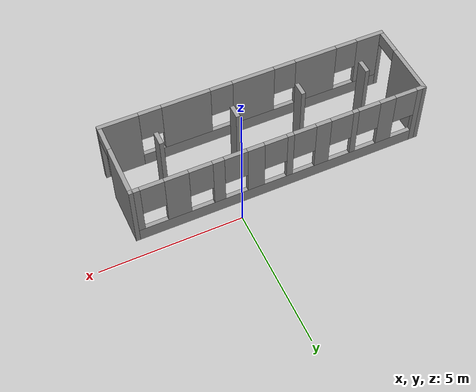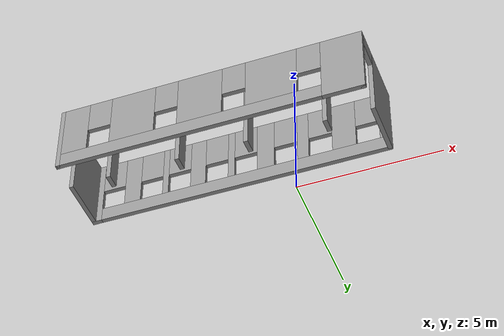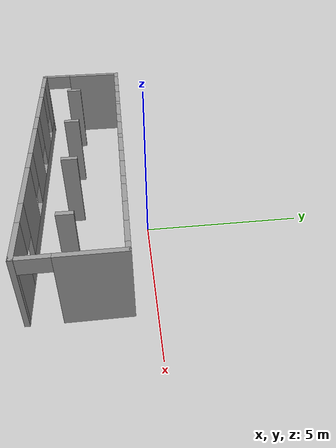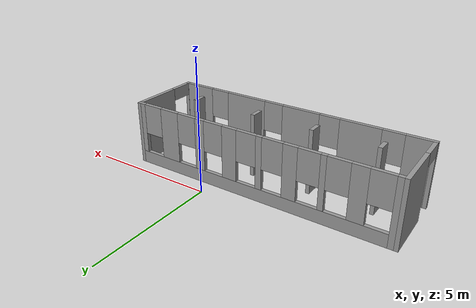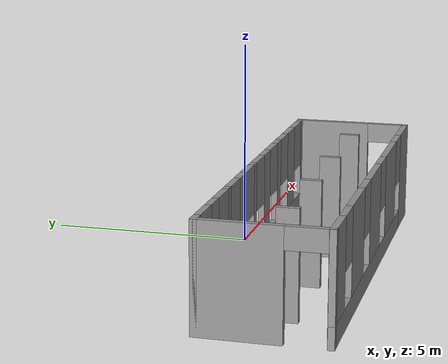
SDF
<?xml version='1.0'?>
<sdf version='1.7'>
  <model name='Warehouse'>
    <pose>-1.755 -1.8075 0 0 -0 0</pose>
    <link name='Wall_0'>
      <pose>-5.175 -0.3075 0 0 -0 1.5708</pose>
      <visual name='Wall_0_Visual_0'>
        <pose>-1.42278 0 1.25 0 -0 0</pose>
        <geometry>
          <box>
            <size>0.154444 0.15 2.5</size>
          </box>
        </geometry>
        <material>
          <script>
            <uri>file://media/materials/scripts/gazebo.material</uri>
            <name>Gazebo/Grey</name>
          </script>
          <ambient>1 1 1 1</ambient>
        </material>
        <meta>
          <layer>0</layer>
        </meta>
      </visual>
      <collision name='Wall_0_Collision_0'>
        <geometry>
          <box>
            <size>0.154444 0.15 2.5</size>
          </box>
        </geometry>
        <pose>-1.42278 0 1.25 0 -0 0</pose>
      </collision>
      <visual name='Wall_0_Visual_1'>
        <pose>0.527222 0 1.25 0 -0 0</pose>
        <geometry>
          <box>
            <size>1.94556 0.15 2.5</size>
          </box>
        </geometry>
        <material>
          <script>
            <uri>file://media/materials/scripts/gazebo.material</uri>
            <name>Gazebo/Grey</name>
          </script>
          <ambient>1 1 1 1</ambient>
        </material>
        <meta>
          <layer>0</layer>
        </meta>
      </visual>
      <collision name='Wall_0_Collision_1'>
        <geometry>
          <box>
            <size>1.94556 0.15 2.5</size>
          </box>
        </geometry>
        <pose>0.527222 0 1.25 0 -0 0</pose>
      </collision>
      <visual name='Wall_0_Visual_2'>
        <pose>-0.895556 0 2.25 0 -0 0</pose>
        <geometry>
          <box>
            <size>0.9 0.15 0.5</size>
          </box>
        </geometry>
        <material>
          <script>
            <uri>file://media/materials/scripts/gazebo.material</uri>
            <name>Gazebo/Grey</name>
          </script>
          <ambient>1 1 1 1</ambient>
        </material>
        <meta>
          <layer>0</layer>
        </meta>
      </visual>
      <collision name='Wall_0_Collision_2'>
        <geometry>
          <box>
            <size>0.9 0.15 0.5</size>
          </box>
        </geometry>
        <pose>-0.895556 0 2.25 0 -0 0</pose>
      </collision>
    </link>
    <link name='Wall_10'>
      <collision name='Wall_10_Collision'>
        <geometry>
          <box>
            <size>0.5 0.15 2.5</size>
          </box>
        </geometry>
        <pose>0 0 1.25 0 -0 0</pose>
      </collision>
      <visual name='Wall_10_Visual'>
        <pose>0 0 1.25 0 -0 0</pose>
        <geometry>
          <box>
            <size>0.5 0.15 2.5</size>
          </box>
        </geometry>
        <material>
          <script>
            <uri>file://media/materials/scripts/gazebo.material</uri>
            <name>Gazebo/Grey</name>
          </script>
          <ambient>1 1 1 1</ambient>
        </material>
        <meta>
          <layer>0</layer>
        </meta>
      </visual>
      <pose>-1.43035 -0.523709 0 0 -0 1.5708</pose>
    </link>
    <link name='Wall_12'>
      <collision name='Wall_12_Collision'>
        <geometry>
          <box>
            <size>0.5 0.15 2.5</size>
          </box>
        </geometry>
        <pose>0 0 1.25 0 -0 0</pose>
      </collision>
      <visual name='Wall_12_Visual'>
        <pose>0 0 1.25 0 -0 0</pose>
        <geometry>
          <box>
            <size>0.5 0.15 2.5</size>
          </box>
        </geometry>
        <material>
          <script>
            <uri>file://media/materials/scripts/gazebo.material</uri>
            <name>Gazebo/Grey</name>
          </script>
          <ambient>1 1 1 1</ambient>
        </material>
        <meta>
          <layer>0</layer>
        </meta>
      </visual>
      <pose>0.934869 -0.515013 0 0 -0 1.5708</pose>
    </link>
    <link name='Wall_15'>
      <collision name='Wall_15_Collision'>
        <geometry>
          <box>
            <size>0.5 0.15 2.5</size>
          </box>
        </geometry>
        <pose>0 0 1.25 0 -0 0</pose>
      </collision>
      <visual name='Wall_15_Visual'>
        <pose>0 0 1.25 0 -0 0</pose>
        <geometry>
          <box>
            <size>0.5 0.15 2.5</size>
          </box>
        </geometry>
        <material>
          <script>
            <uri>file://media/materials/scripts/gazebo.material</uri>
            <name>Gazebo/Grey</name>
          </script>
          <ambient>1 1 1 1</ambient>
        </material>
        <meta>
          <layer>0</layer>
        </meta>
      </visual>
      <pose>3.59574 -0.515013 0 0 -0 1.5708</pose>
    </link>
    <link name='Wall_2'>
      <pose>-0 1.1175 0 0 -0 0</pose>
      <visual name='Wall_2_Visual_0'>
        <pose>-5.07496 0 1.25 0 -0 0</pose>
        <geometry>
          <box>
            <size>0.350087 0.15 2.5</size>
          </box>
        </geometry>
        <material>
          <script>
            <uri>file://media/materials/scripts/gazebo.material</uri>
            <name>Gazebo/Grey</name>
          </script>
          <ambient>1 1 1 1</ambient>
        </material>
        <meta>
          <layer>0</layer>
        </meta>
      </visual>
      <collision name='Wall_2_Collision_0'>
        <geometry>
          <box>
            <size>0.350087 0.15 2.5</size>
          </box>
        </geometry>
        <pose>-5.07496 0 1.25 0 -0 0</pose>
      </collision>
      <visual name='Wall_2_Visual_1'>
        <pose>0.175043 0 0.25 0 -0 0</pose>
        <geometry>
          <box>
            <size>10.1499 0.15 0.5</size>
          </box>
        </geometry>
        <material>
          <script>
            <uri>file://media/materials/scripts/gazebo.material</uri>
            <name>Gazebo/Grey</name>
          </script>
          <ambient>1 1 1 1</ambient>
        </material>
        <meta>
          <layer>0</layer>
        </meta>
      </visual>
      <collision name='Wall_2_Collision_1'>
        <geometry>
          <box>
            <size>10.1499 0.15 0.5</size>
          </box>
        </geometry>
        <pose>0.175043 0 0.25 0 -0 0</pose>
      </collision>
      <visual name='Wall_2_Visual_2'>
        <pose>-3.80861 0 1.5 0 -0 0</pose>
        <geometry>
          <box>
            <size>0.582609 0.15 2</size>
          </box>
        </geometry>
        <material>
          <script>
            <uri>file://media/materials/scripts/gazebo.material</uri>
            <name>Gazebo/Grey</name>
          </script>
          <ambient>1 1 1 1</ambient>
        </material>
        <meta>
          <layer>0</layer>
        </meta>
      </visual>
      <collision name='Wall_2_Collision_2'>
        <geometry>
          <box>
            <size>0.582609 0.15 2</size>
          </box>
        </geometry>
        <pose>-3.80861 0 1.5 0 -0 0</pose>
      </collision>
      <visual name='Wall_2_Visual_3'>
        <pose>-2.61296 0 1.5 0 -0 0</pose>
        <geometry>
          <box>
            <size>0.208696 0.15 2</size>
          </box>
        </geometry>
        <material>
          <script>
            <uri>file://media/materials/scripts/gazebo.material</uri>
            <name>Gazebo/Grey</name>
          </script>
          <ambient>1 1 1 1</ambient>
        </material>
        <meta>
          <layer>0</layer>
        </meta>
      </visual>
      <collision name='Wall_2_Collision_3'>
        <geometry>
          <box>
            <size>0.208696 0.15 2</size>
          </box>
        </geometry>
        <pose>-2.61296 0 1.5 0 -0 0</pose>
      </collision>
      <visual name='Wall_2_Visual_4'>
        <pose>-1.43904 0 1.5 0 -0 0</pose>
        <geometry>
          <box>
            <size>0.53913 0.15 2</size>
          </box>
        </geometry>
        <material>
          <script>
            <uri>file://media/materials/scripts/gazebo.material</uri>
            <name>Gazebo/Grey</name>
          </script>
          <ambient>1 1 1 1</ambient>
        </material>
        <meta>
          <layer>0</layer>
        </meta>
      </visual>
      <collision name='Wall_2_Collision_4'>
        <geometry>
          <box>
            <size>0.53913 0.15 2</size>
          </box>
        </geometry>
        <pose>-1.43904 0 1.5 0 -0 0</pose>
      </collision>
      <visual name='Wall_2_Visual_5'>
        <pose>-0.252087 0 1.5 0 -0 0</pose>
        <geometry>
          <box>
            <size>0.234783 0.15 2</size>
          </box>
        </geometry>
        <material>
          <script>
            <uri>file://media/materials/scripts/gazebo.material</uri>
            <name>Gazebo/Grey</name>
          </script>
          <ambient>1 1 1 1</ambient>
        </material>
        <meta>
          <layer>0</layer>
        </meta>
      </visual>
      <collision name='Wall_2_Collision_5'>
        <geometry>
          <box>
            <size>0.234783 0.15 2</size>
          </box>
        </geometry>
        <pose>-0.252087 0 1.5 0 -0 0</pose>
      </collision>
      <visual name='Wall_2_Visual_6'>
        <pose>0.965304 0 1.5 0 -0 0</pose>
        <geometry>
          <box>
            <size>0.6 0.15 2</size>
          </box>
        </geometry>
        <material>
          <script>
            <uri>file://media/materials/scripts/gazebo.material</uri>
            <name>Gazebo/Grey</name>
          </script>
          <ambient>1 1 1 1</ambient>
        </material>
        <meta>
          <layer>0</layer>
        </meta>
      </visual>
      <collision name='Wall_2_Collision_6'>
        <geometry>
          <box>
            <size>0.6 0.15 2</size>
          </box>
        </geometry>
        <pose>0.965304 0 1.5 0 -0 0</pose>
      </collision>
      <visual name='Wall_2_Visual_7'>
        <pose>2.26313 0 1.5 0 -0 0</pose>
        <geometry>
          <box>
            <size>0.395652 0.15 2</size>
          </box>
        </geometry>
        <material>
          <script>
            <uri>file://media/materials/scripts/gazebo.material</uri>
            <name>Gazebo/Grey</name>
          </script>
          <ambient>1 1 1 1</ambient>
        </material>
        <meta>
          <layer>0</layer>
        </meta>
      </visual>
      <collision name='Wall_2_Collision_7'>
        <geometry>
          <box>
            <size>0.395652 0.15 2</size>
          </box>
        </geometry>
        <pose>2.26313 0 1.5 0 -0 0</pose>
      </collision>
      <visual name='Wall_2_Visual_8'>
        <pose>3.67617 0 1.5 0 -0 0</pose>
        <geometry>
          <box>
            <size>0.813044 0.15 2</size>
          </box>
        </geometry>
        <material>
          <script>
            <uri>file://media/materials/scripts/gazebo.material</uri>
            <name>Gazebo/Grey</name>
          </script>
          <ambient>1 1 1 1</ambient>
        </material>
        <meta>
          <layer>0</layer>
        </meta>
      </visual>
      <collision name='Wall_2_Collision_8'>
        <geometry>
          <box>
            <size>0.813044 0.15 2</size>
          </box>
        </geometry>
        <pose>3.67617 0 1.5 0 -0 0</pose>
      </collision>
      <visual name='Wall_2_Visual_9'>
        <pose>5.06635 0 1.5 0 -0 0</pose>
        <geometry>
          <box>
            <size>0.367305 0.15 2</size>
          </box>
        </geometry>
        <material>
          <script>
            <uri>file://media/materials/scripts/gazebo.material</uri>
            <name>Gazebo/Grey</name>
          </script>
          <ambient>1 1 1 1</ambient>
        </material>
        <meta>
          <layer>0</layer>
        </meta>
      </visual>
      <collision name='Wall_2_Collision_9'>
        <geometry>
          <box>
            <size>0.367305 0.15 2</size>
          </box>
        </geometry>
        <pose>5.06635 0 1.5 0 -0 0</pose>
      </collision>
      <visual name='Wall_2_Visual_10'>
        <pose>-4.49991 0 1.9 0 -0 0</pose>
        <geometry>
          <box>
            <size>0.8 0.15 1.2</size>
          </box>
        </geometry>
        <material>
          <script>
            <uri>file://media/materials/scripts/gazebo.material</uri>
            <name>Gazebo/Grey</name>
          </script>
          <ambient>1 1 1 1</ambient>
        </material>
        <meta>
          <layer>0</layer>
        </meta>
      </visual>
      <collision name='Wall_2_Collision_10'>
        <geometry>
          <box>
            <size>0.8 0.15 1.2</size>
          </box>
        </geometry>
        <pose>-4.49991 0 1.9 0 -0 0</pose>
      </collision>
      <visual name='Wall_2_Visual_11'>
        <pose>-3.1173 0 1.9 0 -0 0</pose>
        <geometry>
          <box>
            <size>0.8 0.15 1.2</size>
          </box>
        </geometry>
        <material>
          <script>
            <uri>file://media/materials/scripts/gazebo.material</uri>
            <name>Gazebo/Grey</name>
          </script>
          <ambient>1 1 1 1</ambient>
        </material>
        <meta>
          <layer>0</layer>
        </meta>
      </visual>
      <collision name='Wall_2_Collision_11'>
        <geometry>
          <box>
            <size>0.8 0.15 1.2</size>
          </box>
        </geometry>
        <pose>-3.1173 0 1.9 0 -0 0</pose>
      </collision>
      <visual name='Wall_2_Visual_12'>
        <pose>-2.10861 0 1.9 0 -0 0</pose>
        <geometry>
          <box>
            <size>0.8 0.15 1.2</size>
          </box>
        </geometry>
        <material>
          <script>
            <uri>file://media/materials/scripts/gazebo.material</uri>
            <name>Gazebo/Grey</name>
          </script>
          <ambient>1 1 1 1</ambient>
        </material>
        <meta>
          <layer>0</layer>
        </meta>
      </visual>
      <collision name='Wall_2_Collision_12'>
        <geometry>
          <box>
            <size>0.8 0.15 1.2</size>
          </box>
        </geometry>
        <pose>-2.10861 0 1.9 0 -0 0</pose>
      </collision>
      <visual name='Wall_2_Visual_13'>
        <pose>-0.769478 0 1.9 0 -0 0</pose>
        <geometry>
          <box>
            <size>0.8 0.15 1.2</size>
          </box>
        </geometry>
        <material>
          <script>
            <uri>file://media/materials/scripts/gazebo.material</uri>
            <name>Gazebo/Grey</name>
          </script>
          <ambient>1 1 1 1</ambient>
        </material>
        <meta>
          <layer>0</layer>
        </meta>
      </visual>
      <collision name='Wall_2_Collision_13'>
        <geometry>
          <box>
            <size>0.8 0.15 1.2</size>
          </box>
        </geometry>
        <pose>-0.769478 0 1.9 0 -0 0</pose>
      </collision>
      <visual name='Wall_2_Visual_14'>
        <pose>0.265304 0 1.9 0 -0 0</pose>
        <geometry>
          <box>
            <size>0.8 0.15 1.2</size>
          </box>
        </geometry>
        <material>
          <script>
            <uri>file://media/materials/scripts/gazebo.material</uri>
            <name>Gazebo/Grey</name>
          </script>
          <ambient>1 1 1 1</ambient>
        </material>
        <meta>
          <layer>0</layer>
        </meta>
      </visual>
      <collision name='Wall_2_Collision_14'>
        <geometry>
          <box>
            <size>0.8 0.15 1.2</size>
          </box>
        </geometry>
        <pose>0.265304 0 1.9 0 -0 0</pose>
      </collision>
      <visual name='Wall_2_Visual_15'>
        <pose>1.6653 0 1.9 0 -0 0</pose>
        <geometry>
          <box>
            <size>0.8 0.15 1.2</size>
          </box>
        </geometry>
        <material>
          <script>
            <uri>file://media/materials/scripts/gazebo.material</uri>
            <name>Gazebo/Grey</name>
          </script>
          <ambient>1 1 1 1</ambient>
        </material>
        <meta>
          <layer>0</layer>
        </meta>
      </visual>
      <collision name='Wall_2_Collision_15'>
        <geometry>
          <box>
            <size>0.8 0.15 1.2</size>
          </box>
        </geometry>
        <pose>1.6653 0 1.9 0 -0 0</pose>
      </collision>
      <visual name='Wall_2_Visual_16'>
        <pose>2.8653 0 1.9 0 -0 0</pose>
        <geometry>
          <box>
            <size>0.808696 0.15 1.2</size>
          </box>
        </geometry>
        <material>
          <script>
            <uri>file://media/materials/scripts/gazebo.material</uri>
            <name>Gazebo/Grey</name>
          </script>
          <ambient>1 1 1 1</ambient>
        </material>
        <meta>
          <layer>0</layer>
        </meta>
      </visual>
      <collision name='Wall_2_Collision_16'>
        <geometry>
          <box>
            <size>0.808696 0.15 1.2</size>
          </box>
        </geometry>
        <pose>2.8653 0 1.9 0 -0 0</pose>
      </collision>
      <visual name='Wall_2_Visual_17'>
        <pose>4.48269 0 1.9 0 -0 0</pose>
        <geometry>
          <box>
            <size>0.8 0.15 1.2</size>
          </box>
        </geometry>
        <material>
          <script>
            <uri>file://media/materials/scripts/gazebo.material</uri>
            <name>Gazebo/Grey</name>
          </script>
          <ambient>1 1 1 1</ambient>
        </material>
        <meta>
          <layer>0</layer>
        </meta>
      </visual>
      <collision name='Wall_2_Collision_17'>
        <geometry>
          <box>
            <size>0.8 0.15 1.2</size>
          </box>
        </geometry>
        <pose>4.48269 0 1.9 0 -0 0</pose>
      </collision>
    </link>
    <link name='Wall_3'>
      <pose>5.175 -0.3075 0 0 -0 -1.5708</pose>
      <visual name='Wall_3_Visual_0'>
        <pose>-0.527222 0 1.25 0 -0 0</pose>
        <geometry>
          <box>
            <size>1.94556 0.15 2.5</size>
          </box>
        </geometry>
        <material>
          <script>
            <uri>file://media/materials/scripts/gazebo.material</uri>
            <name>Gazebo/Grey</name>
          </script>
          <ambient>1 1 1 1</ambient>
        </material>
        <meta>
          <layer>0</layer>
        </meta>
      </visual>
      <collision name='Wall_3_Collision_0'>
        <geometry>
          <box>
            <size>1.94556 0.15 2.5</size>
          </box>
        </geometry>
        <pose>-0.527222 0 1.25 0 -0 0</pose>
      </collision>
      <visual name='Wall_3_Visual_1'>
        <pose>1.42278 0 1.25 0 -0 0</pose>
        <geometry>
          <box>
            <size>0.154444 0.15 2.5</size>
          </box>
        </geometry>
        <material>
          <script>
            <uri>file://media/materials/scripts/gazebo.material</uri>
            <name>Gazebo/Grey</name>
          </script>
          <ambient>1 1 1 1</ambient>
        </material>
        <meta>
          <layer>0</layer>
        </meta>
      </visual>
      <collision name='Wall_3_Collision_1'>
        <geometry>
          <box>
            <size>0.154444 0.15 2.5</size>
          </box>
        </geometry>
        <pose>1.42278 0 1.25 0 -0 0</pose>
      </collision>
      <visual name='Wall_3_Visual_2'>
        <pose>0.895556 0 2.25 0 -0 0</pose>
        <geometry>
          <box>
            <size>0.9 0.15 0.5</size>
          </box>
        </geometry>
        <material>
          <script>
            <uri>file://media/materials/scripts/gazebo.material</uri>
            <name>Gazebo/Grey</name>
          </script>
          <ambient>1 1 1 1</ambient>
        </material>
        <meta>
          <layer>0</layer>
        </meta>
      </visual>
      <collision name='Wall_3_Collision_2'>
        <geometry>
          <box>
            <size>0.9 0.15 0.5</size>
          </box>
        </geometry>
        <pose>0.895556 0 2.25 0 -0 0</pose>
      </collision>
    </link>
    <link name='Wall_4'>
      <pose>-0 -1.7325 0 0 -0 3.14159</pose>
      <visual name='Wall_4_Visual_0'>
        <pose>-4.54461 0 1.25 0 -0 0</pose>
        <geometry>
          <box>
            <size>1.41078 0.15 2.5</size>
          </box>
        </geometry>
        <material>
          <script>
            <uri>file://media/materials/scripts/gazebo.material</uri>
            <name>Gazebo/Grey</name>
          </script>
          <ambient>1 1 1 1</ambient>
        </material>
        <meta>
          <layer>0</layer>
        </meta>
      </visual>
      <collision name='Wall_4_Collision_0'>
        <geometry>
          <box>
            <size>1.41078 0.15 2.5</size>
          </box>
        </geometry>
        <pose>-4.54461 0 1.25 0 -0 0</pose>
      </collision>
      <visual name='Wall_4_Visual_1'>
        <pose>0.705391 0 0.25 0 -0 0</pose>
        <geometry>
          <box>
            <size>9.08922 0.15 0.5</size>
          </box>
        </geometry>
        <material>
          <script>
            <uri>file://media/materials/scripts/gazebo.material</uri>
            <name>Gazebo/Grey</name>
          </script>
          <ambient>1 1 1 1</ambient>
        </material>
        <meta>
          <layer>0</layer>
        </meta>
      </visual>
      <collision name='Wall_4_Collision_1'>
        <geometry>
          <box>
            <size>9.08922 0.15 0.5</size>
          </box>
        </geometry>
        <pose>0.705391 0 0.25 0 -0 0</pose>
      </collision>
      <visual name='Wall_4_Visual_2'>
        <pose>-2.16965 0 1.5 0 -0 0</pose>
        <geometry>
          <box>
            <size>1.73913 0.15 2</size>
          </box>
        </geometry>
        <material>
          <script>
            <uri>file://media/materials/scripts/gazebo.material</uri>
            <name>Gazebo/Grey</name>
          </script>
          <ambient>1 1 1 1</ambient>
        </material>
        <meta>
          <layer>0</layer>
        </meta>
      </visual>
      <collision name='Wall_4_Collision_2'>
        <geometry>
          <box>
            <size>1.73913 0.15 2</size>
          </box>
        </geometry>
        <pose>-2.16965 0 1.5 0 -0 0</pose>
      </collision>
      <visual name='Wall_4_Visual_3'>
        <pose>0.269478 0 1.5 0 -0 0</pose>
        <geometry>
          <box>
            <size>1.53913 0.15 2</size>
          </box>
        </geometry>
        <material>
          <script>
            <uri>file://media/materials/scripts/gazebo.material</uri>
            <name>Gazebo/Grey</name>
          </script>
          <ambient>1 1 1 1</ambient>
        </material>
        <meta>
          <layer>0</layer>
        </meta>
      </visual>
      <collision name='Wall_4_Collision_3'>
        <geometry>
          <box>
            <size>1.53913 0.15 2</size>
          </box>
        </geometry>
        <pose>0.269478 0 1.5 0 -0 0</pose>
      </collision>
      <visual name='Wall_4_Visual_4'>
        <pose>2.6173 0 1.5 0 -0 0</pose>
        <geometry>
          <box>
            <size>1.55652 0.15 2</size>
          </box>
        </geometry>
        <material>
          <script>
            <uri>file://media/materials/scripts/gazebo.material</uri>
            <name>Gazebo/Grey</name>
          </script>
          <ambient>1 1 1 1</ambient>
        </material>
        <meta>
          <layer>0</layer>
        </meta>
      </visual>
      <collision name='Wall_4_Collision_4'>
        <geometry>
          <box>
            <size>1.55652 0.15 2</size>
          </box>
        </geometry>
        <pose>2.6173 0 1.5 0 -0 0</pose>
      </collision>
      <visual name='Wall_4_Visual_5'>
        <pose>4.72278 0 1.5 0 -0 0</pose>
        <geometry>
          <box>
            <size>1.05444 0.15 2</size>
          </box>
        </geometry>
        <material>
          <script>
            <uri>file://media/materials/scripts/gazebo.material</uri>
            <name>Gazebo/Grey</name>
          </script>
          <ambient>1 1 1 1</ambient>
        </material>
        <meta>
          <layer>0</layer>
        </meta>
      </visual>
      <collision name='Wall_4_Collision_5'>
        <geometry>
          <box>
            <size>1.05444 0.15 2</size>
          </box>
        </geometry>
        <pose>4.72278 0 1.5 0 -0 0</pose>
      </collision>
      <visual name='Wall_4_Visual_6'>
        <pose>-3.43922 0 1.9 0 -0 0</pose>
        <geometry>
          <box>
            <size>0.8 0.15 1.2</size>
          </box>
        </geometry>
        <material>
          <script>
            <uri>file://media/materials/scripts/gazebo.material</uri>
            <name>Gazebo/Grey</name>
          </script>
          <ambient>1 1 1 1</ambient>
        </material>
        <meta>
          <layer>0</layer>
        </meta>
      </visual>
      <collision name='Wall_4_Collision_6'>
        <geometry>
          <box>
            <size>0.8 0.15 1.2</size>
          </box>
        </geometry>
        <pose>-3.43922 0 1.9 0 -0 0</pose>
      </collision>
      <visual name='Wall_4_Visual_7'>
        <pose>-0.900087 0 1.9 0 -0 0</pose>
        <geometry>
          <box>
            <size>0.8 0.15 1.2</size>
          </box>
        </geometry>
        <material>
          <script>
            <uri>file://media/materials/scripts/gazebo.material</uri>
            <name>Gazebo/Grey</name>
          </script>
          <ambient>1 1 1 1</ambient>
        </material>
        <meta>
          <layer>0</layer>
        </meta>
      </visual>
      <collision name='Wall_4_Collision_7'>
        <geometry>
          <box>
            <size>0.8 0.15 1.2</size>
          </box>
        </geometry>
        <pose>-0.900087 0 1.9 0 -0 0</pose>
      </collision>
      <visual name='Wall_4_Visual_8'>
        <pose>1.43904 0 1.9 0 -0 0</pose>
        <geometry>
          <box>
            <size>0.8 0.15 1.2</size>
          </box>
        </geometry>
        <material>
          <script>
            <uri>file://media/materials/scripts/gazebo.material</uri>
            <name>Gazebo/Grey</name>
          </script>
          <ambient>1 1 1 1</ambient>
        </material>
        <meta>
          <layer>0</layer>
        </meta>
      </visual>
      <collision name='Wall_4_Collision_8'>
        <geometry>
          <box>
            <size>0.8 0.15 1.2</size>
          </box>
        </geometry>
        <pose>1.43904 0 1.9 0 -0 0</pose>
      </collision>
      <visual name='Wall_4_Visual_9'>
        <pose>3.79556 0 1.9 0 -0 0</pose>
        <geometry>
          <box>
            <size>0.8 0.15 1.2</size>
          </box>
        </geometry>
        <material>
          <script>
            <uri>file://media/materials/scripts/gazebo.material</uri>
            <name>Gazebo/Grey</name>
          </script>
          <ambient>1 1 1 1</ambient>
        </material>
        <meta>
          <layer>0</layer>
        </meta>
      </visual>
      <collision name='Wall_4_Collision_9'>
        <geometry>
          <box>
            <size>0.8 0.15 1.2</size>
          </box>
        </geometry>
        <pose>3.79556 0 1.9 0 -0 0</pose>
      </collision>
    </link>
    <link name='Wall_8'>
      <collision name='Wall_8_Collision'>
        <geometry>
          <box>
            <size>0.5 0.15 2.5</size>
          </box>
        </geometry>
        <pose>0 0 1.25 0 -0 0</pose>
      </collision>
      <visual name='Wall_8_Visual'>
        <pose>0 0 1.25 0 -0 0</pose>
        <geometry>
          <box>
            <size>0.5 0.15 2.5</size>
          </box>
        </geometry>
        <material>
          <script>
            <uri>file://media/materials/scripts/gazebo.material</uri>
            <name>Gazebo/Grey</name>
          </script>
          <ambient>1 1 1 1</ambient>
        </material>
        <meta>
          <layer>0</layer>
        </meta>
      </visual>
      <pose>-3.83904 -0.532404 0 0 -0 1.5708</pose>
    </link>
    <static>1</static>
  </model>
</sdf>
